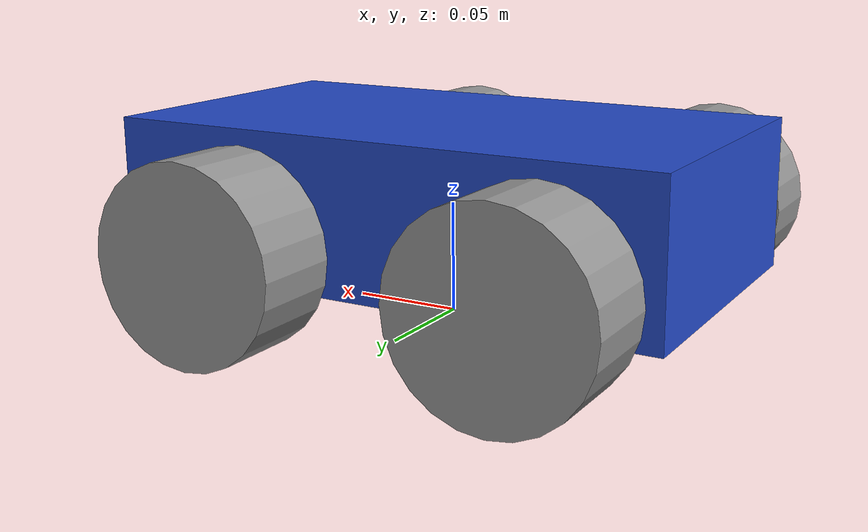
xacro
<?xml version="1.0"?>
<robot xmlns:xacro="http://www.ros.org/wiki/xacro">

    <xacro:property name="base_length" value="0.255" />
    <xacro:property name="base_width" value="0.14" />
    <xacro:property name="base_height" value="0.068" />
    <xacro:property name="wheel_radius" value="0.0425" />
    <xacro:property name="wheel_length" value="0.039" />

    <link name="base_footprint" />

    <link name="base_link">
        <visual>
            <geometry>
                <box size="${base_length} ${base_width} ${base_height}" />
            </geometry>
            <origin xyz="0 0 0" rpy="0 0 0" />
            <material name="blue" />
        </visual>
        <collision>
            <geometry>
                <box size="${base_length} ${base_width} ${base_height}" />
            </geometry>
            <origin xyz="0 0 0" rpy="0 0 0" />
        </collision>
        <xacro:box_inertia m="5.0" l="${2*base_length}" w="${2*base_width}" h="${2*base_height}"
                           xyz="0 0 ${base_height / 2.0}" rpy="0 0 0" />
    </link>

    <xacro:macro name="wheel_link" params="prefix">
        <link name="${prefix}_wheel_link">
            <visual>
                <geometry>
                    <cylinder radius="${wheel_radius}" length="${wheel_length}" />
                </geometry>
                <origin xyz="0 0 0" rpy="${pi / 2.0} 0 0" />
                <material name="grey" />
            </visual>
            <collision>
                <geometry>
                    <cylinder radius="${wheel_radius}" length="${wheel_length}" />
                </geometry>
                <origin xyz="0 0 0" rpy="${pi / 2.0} 0 0" />
            </collision>
            <xacro:cylinder_inertia m="1.0" r="${2*wheel_radius}" h="${2*wheel_length}"
                                    xyz="0 0 0" rpy="${pi / 2.0} 0 0" />
        </link>
    </xacro:macro>

    <xacro:wheel_link prefix="rf" />
    <xacro:wheel_link prefix="lf" />
    <xacro:wheel_link prefix="rb" />
    <xacro:wheel_link prefix="lb" />

    <joint name="base_joint" type="fixed">
        <parent link="base_footprint" />
        <child link="base_link" />
        <origin xyz="0 0 0.055" rpy="0 0 0"/>
    </joint>

    <joint name="right_wheel_joint" type="continuous">
        <parent link="base_link" />
        <child link="rb_wheel_link" />
        <origin xyz="-0.0825 -0.1025 -0.0125" rpy="0 0 0" />
        <axis xyz="0 1 0" />
    </joint>

    <joint name="left_wheel_joint" type="continuous">
        <parent link="base_link" />
        <child link="lb_wheel_link" />
        <origin xyz="-0.0825 0.1025 -0.0125" rpy="0 0 0" />
        <axis xyz="0 1 0" />
    </joint>

    <joint name="base_rf_wheel_joint" type="continuous">
        <parent link="base_link" />
        <child link="rf_wheel_link" />
        <origin xyz="0.0525 -0.1025 -0.0125" rpy="0 0 0" />
        <axis xyz="0 1 0" />
        <mimic joint="right_wheel_joint" multiplier="1.0" offset="0.0"/>
    </joint>

    <joint name="base_lf_wheel_joint" type="continuous">
        <parent link="base_link" />
        <child link="lf_wheel_link" />
        <origin xyz="0.0525 0.1025 -0.0125" rpy="0 0 0" />
        <axis xyz="0 1 0" />
        <mimic joint="left_wheel_joint" multiplier="1.0" offset="0.0"/>
    </joint>
</robot>
